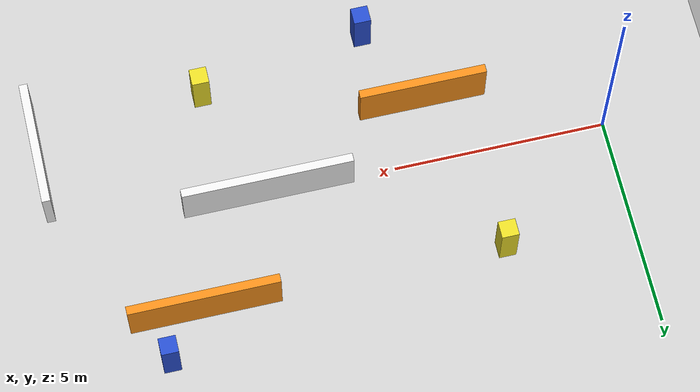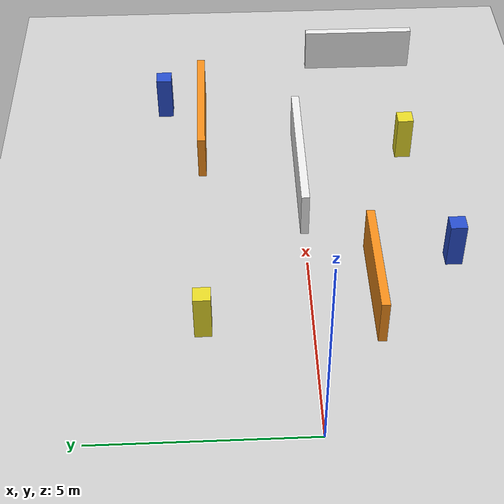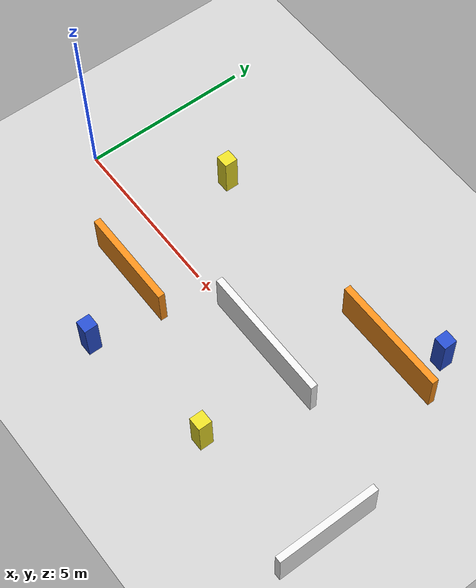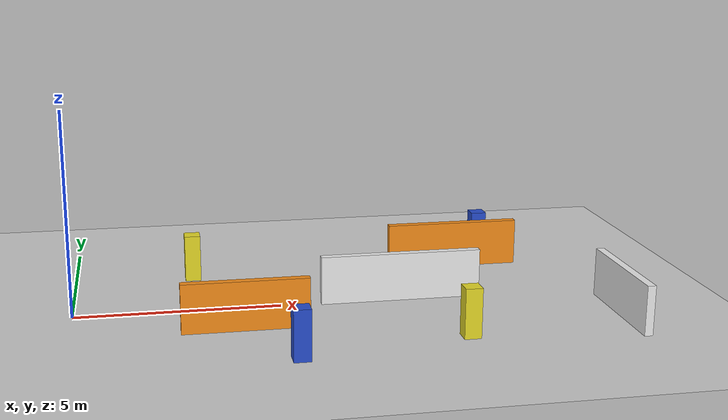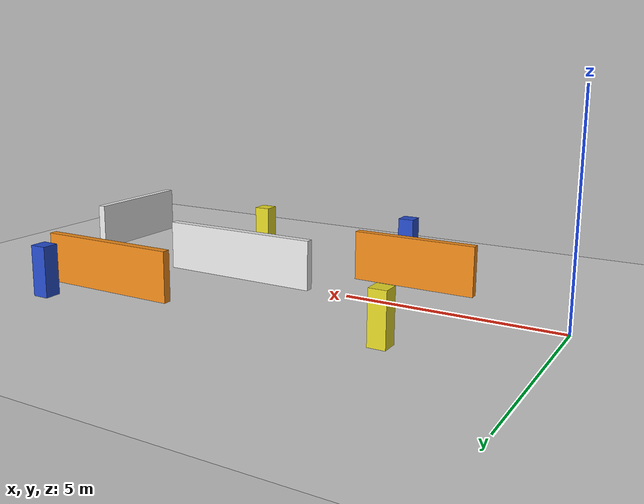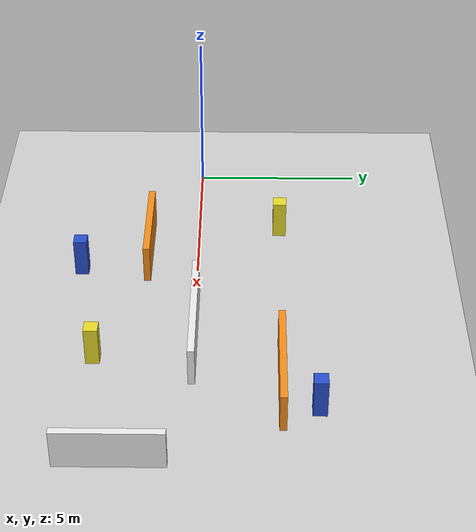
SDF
<?xml version="1.0" ?>
<sdf version="1.6">
  <world name="training_arena">
    <!-- Open training area; obstacle gaps >= 3.0m for cloud inflation. -->
    <plugin name="gazebo_ros_state" filename="libgazebo_ros_state.so">
      <ros>
        <remapping>model_states:=model_states</remapping>
        <remapping>link_states:=link_states</remapping>
      </ros>
      <update_rate>10.0</update_rate>
    </plugin>
    <physics type="ode">
      <max_step_size>0.002</max_step_size>
      <real_time_update_rate>500</real_time_update_rate>
    </physics>
    <include><uri>model://sun</uri></include>
    <include><uri>model://ground_plane</uri></include>

    <!-- Internal obstacles (wide passages) -->
    <model name="obstacle_40_2_12_inner_h">
      <static>true</static>
      <pose>8 0 0.6 0 0 0</pose>
      <link name="link">
        <collision name="collision">
          <geometry><box><size>4 0.2 1.2</size></box></geometry>
        </collision>
        <visual name="visual">
          <geometry><box><size>4 0.2 1.2</size></box></geometry>
          <material>
            <script>
              <uri>file://media/materials/scripts/gazebo.material</uri>
              <name>Gazebo/White</name>
            </script>
          </material>
        </visual>
      </link>
    </model>

    <model name="obstacle_4_4_12_pillar_0">
      <static>true</static>
      <pose>5 -3.5 0.6 0 0 0</pose>
      <link name="link">
        <collision name="collision">
          <geometry><box><size>0.4 0.4 1.2</size></box></geometry>
        </collision>
        <visual name="visual">
          <geometry><box><size>0.4 0.4 1.2</size></box></geometry>
          <material>
            <script>
              <uri>file://media/materials/scripts/gazebo.material</uri>
              <name>Gazebo/Blue</name>
            </script>
          </material>
        </visual>
      </link>
    </model>

    <model name="obstacle_4_4_12_pillar_1">
      <static>true</static>
      <pose>11 3.5 0.6 0 0 0</pose>
      <link name="link">
        <collision name="collision">
          <geometry><box><size>0.4 0.4 1.2</size></box></geometry>
        </collision>
        <visual name="visual">
          <geometry><box><size>0.4 0.4 1.2</size></box></geometry>
          <material>
            <script>
              <uri>file://media/materials/scripts/gazebo.material</uri>
              <name>Gazebo/Blue</name>
            </script>
          </material>
        </visual>
      </link>
    </model>

    <model name="obstacle_2_30_12_inner_v">
      <static>true</static>
      <pose>13 -2 0.6 0 0 0</pose>
      <link name="link">
        <collision name="collision">
          <geometry><box><size>0.2 3 1.2</size></box></geometry>
        </collision>
        <visual name="visual">
          <geometry><box><size>0.2 3 1.2</size></box></geometry>
          <material>
            <script>
              <uri>file://media/materials/scripts/gazebo.material</uri>
              <name>Gazebo/White</name>
            </script>
          </material>
        </visual>
      </link>
    </model>

    <model name="obstacle_30_2_12_inner_h2">
      <static>true</static>
      <pose>4 -1.5 0.6 0 0 0</pose>
      <link name="link">
        <collision name="collision">
          <geometry><box><size>3 0.2 1.2</size></box></geometry>
        </collision>
        <visual name="visual">
          <geometry><box><size>3 0.2 1.2</size></box></geometry>
          <material>
            <script>
              <uri>file://media/materials/scripts/gazebo.material</uri>
              <name>Gazebo/Orange</name>
            </script>
          </material>
        </visual>
      </link>
    </model>

    <model name="obstacle_35_2_12_inner_h3">
      <static>true</static>
      <pose>10 2.5 0.6 0 0 0</pose>
      <link name="link">
        <collision name="collision">
          <geometry><box><size>3.5 0.2 1.2</size></box></geometry>
        </collision>
        <visual name="visual">
          <geometry><box><size>3.5 0.2 1.2</size></box></geometry>
          <material>
            <script>
              <uri>file://media/materials/scripts/gazebo.material</uri>
              <name>Gazebo/Orange</name>
            </script>
          </material>
        </visual>
      </link>
    </model>

    <model name="obstacle_4_4_12_pillar_2">
      <static>true</static>
      <pose>9 -2.8 0.6 0 0 0</pose>
      <link name="link">
        <collision name="collision">
          <geometry><box><size>0.4 0.4 1.2</size></box></geometry>
        </collision>
        <visual name="visual">
          <geometry><box><size>0.4 0.4 1.2</size></box></geometry>
          <material>
            <script>
              <uri>file://media/materials/scripts/gazebo.material</uri>
              <name>Gazebo/Yellow</name>
            </script>
          </material>
        </visual>
      </link>
    </model>

    <model name="obstacle_4_4_12_pillar_3">
      <static>true</static>
      <pose>3 2.5 0.6 0 0 0</pose>
      <link name="link">
        <collision name="collision">
          <geometry><box><size>0.4 0.4 1.2</size></box></geometry>
        </collision>
        <visual name="visual">
          <geometry><box><size>0.4 0.4 1.2</size></box></geometry>
          <material>
            <script>
              <uri>file://media/materials/scripts/gazebo.material</uri>
              <name>Gazebo/Yellow</name>
            </script>
          </material>
        </visual>
      </link>
    </model>

  </world>
</sdf>
